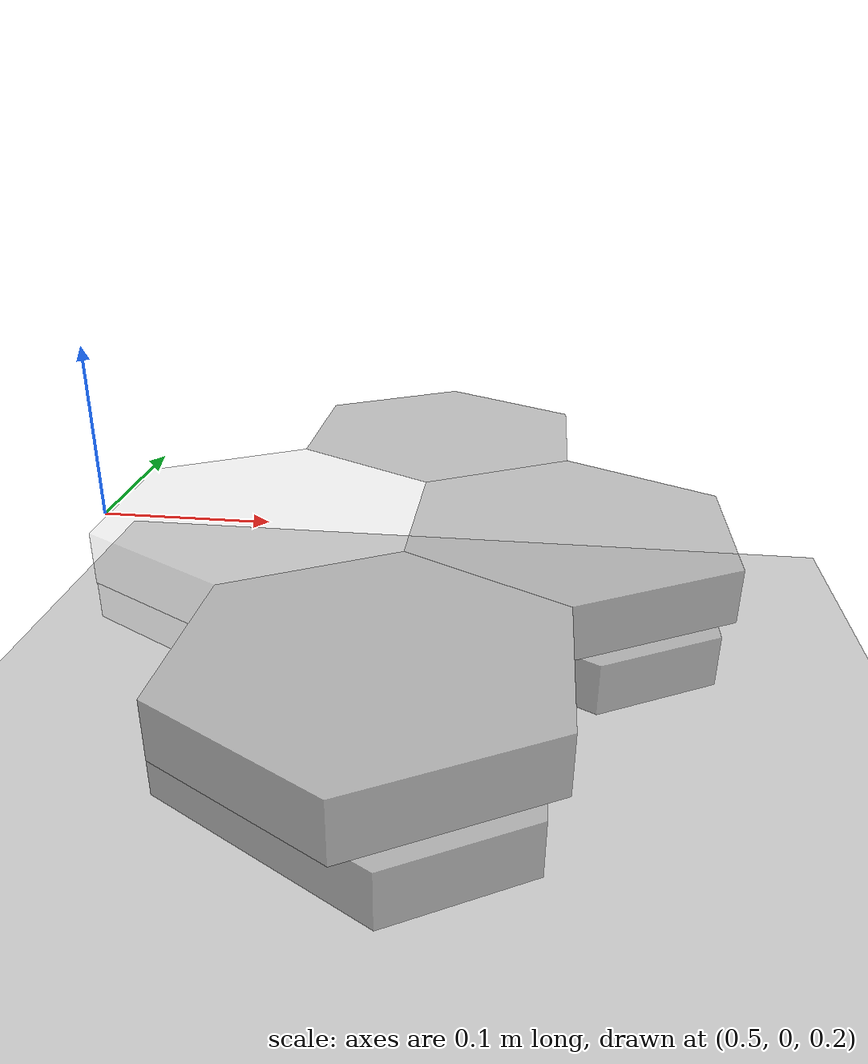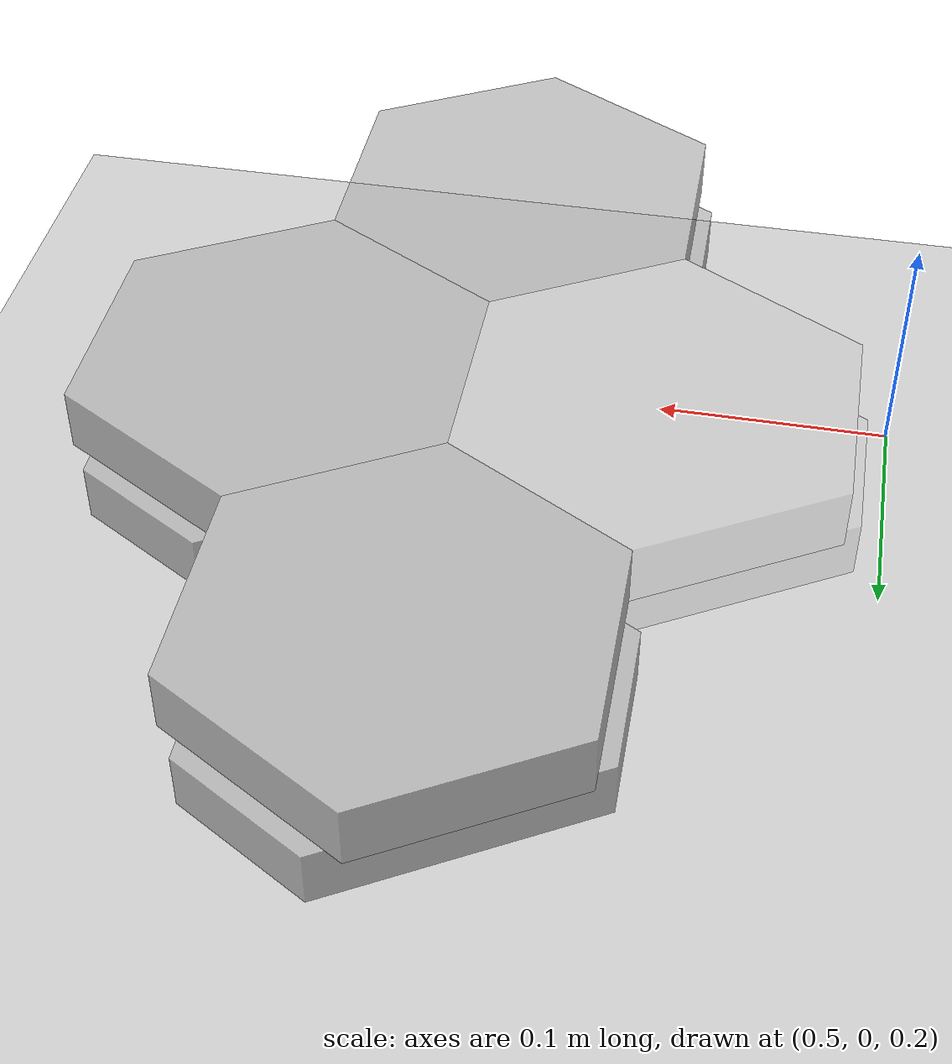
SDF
<?xml version="1.0" ?>
<sdf version="1.6">
  <world name="tile_env">
    <!--A global light source-->
    <include>
      <uri>model://sun</uri>
    </include>
    <!--A ground plane-->
    <include>
      <uri>model://ground_plane</uri>
    </include>
    <!-- A Table -->
    <!--A Passive Tile-->
    <include>
      <uri>model://passive_tile_new</uri>
      <pose>0.6 0.0 0.15 0 0 0</pose>
      <static>1</static>
    </include>
  </world>
</sdf>

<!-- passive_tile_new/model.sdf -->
<sdf version='1.6'>
  <model name='passive_tile_new'>
    <link name="empty_tile">
      <visual name='bot_tile'>
        <pose>0 0 0 1.57079632679 0.0 0.523599</pose>
        <geometry>
          <mesh><uri>model://passive_tile_new/meshes/collision/TileHand_Bot_Collision_0mm/TileHand_Bot_Collision.obj</uri></mesh>
        </geometry>
        <transparency>0.9</transparency>
      </visual>

      <visual name='top_tile'>
        <pose>0 0 0.03 1.57079632679 0.0 0.523599</pose>
        <geometry>
          <mesh><uri>model://passive_tile_new/meshes/collision/TileHand_Top_Collision_0mm/TileHand_Top_Collision.obj</uri></mesh>
        </geometry>
        <transparency>0.9</transparency>
      </visual>

      <visual name="visual_bot1">
        <pose>0.086602540378 0.15  0 1.57079632679 0.0 0.523599</pose>
        <geometry>
          <mesh><uri>model://passive_tile_new/meshes/collision/TileHand_Bot_Collision_0mm/TileHand_Bot_Collision.obj</uri></mesh>
        </geometry>
        <transparency>0.2</transparency>
      </visual>
      <visual name="visual_top1">
        <pose>0.086602540378 0.15 0.03 1.57079632679 0.0 0.523599</pose>
        <geometry>
          <mesh><uri>model://passive_tile_new/meshes/collision/TileHand_Top_Collision_0mm/TileHand_Top_Collision.obj</uri></mesh>
        </geometry>
        <transparency>0.2</transparency>
      </visual>

      <visual name="visual_bot2">
        <pose>0.086602540378 -0.15 0 1.57079632679 0.0 0.523599</pose>
        <geometry>
          <mesh><uri>model://passive_tile_new/meshes/collision/TileHand_Bot_Collision_0mm/TileHand_Bot_Collision.obj</uri></mesh>
        </geometry>
        <transparency>0.2</transparency>
      </visual>

      <visual name="visual_top2">
        <pose>0.086602540378 -0.15 0.03 1.57079632679 0.0 0.523599</pose>
        <geometry>
          <mesh><uri>model://passive_tile_new/meshes/collision/TileHand_Top_Collision_0mm/TileHand_Top_Collision.obj</uri></mesh>
        </geometry>
        <transparency>0.2</transparency>
      </visual>

      <visual name="visual_bot3">
        <pose>0.17320508075 0 0 1.57079632679 0.0 0.523599</pose>
        <geometry>
          <mesh><uri>model://passive_tile_new/meshes/collision/TileHand_Bot_Collision_0mm/TileHand_Bot_Collision.obj</uri></mesh>
        </geometry>
        <transparency>0.2</transparency>
      </visual>

      <visual name="visual_top3">
        <pose>0.17320508075 0 0.03 1.57079632679 0.0 0.523599</pose>
        <geometry>
          <mesh><uri>model://passive_tile_new/meshes/collision/TileHand_Top_Collision_0mm/TileHand_Top_Collision.obj</uri></mesh>
        </geometry>
        <transparency>0.2</transparency>
      </visual>

    </link>
  </model>
</sdf>
